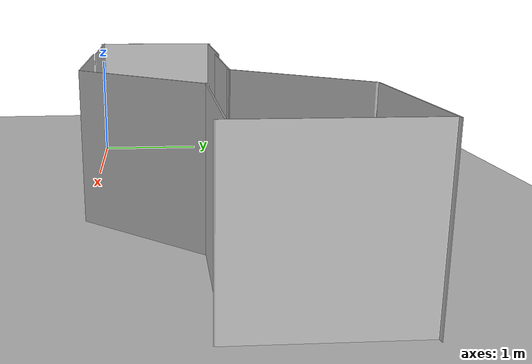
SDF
<sdf version="1.7">
 <world name="default">
  <light name="sun" type="directional">
   <pose>0 0 10 0 -0 0</pose>
   <diffuse>0.8 0.8 0.8 1</diffuse>
   <specular>0.2 0.2 0.2 1</specular>
   <attenuation>
    <range>1000</range>
    <constant>0.9</constant>
    <linear>0.01</linear>
    <quadratic>0.001</quadratic>
   </attenuation>
   <direction>-0.5 0.1 -0.9</direction>
   <spot><inner_angle>0</inner_angle><outer_angle>0</outer_angle><falloff>0</falloff></spot>
  </light>
  <model name="ground_plane">
   <static>1</static>
   <link name="link">
    <collision name="collision">
     <geometry><plane><normal>0 0 1</normal><size>100 100</size></plane></geometry>
     <surface><friction><ode><mu>100</mu><mu2>50</mu2></ode></friction></surface>
    </collision>
    <visual name="visual">
     <cast_shadows>0</cast_shadows>
     <geometry><plane><normal>0 0 1</normal><size>100 100</size></plane></geometry>
     <material>
      <script><uri>file://media/materials/scripts/gazebo.material</uri><name>Gazebo/Grey</name></script>
     </material>
    </visual>
   </link>
  </model>
  <gravity>0 0 -9.8</gravity>
  <magnetic_field>6e-06 2.3e-05 -4.2e-05</magnetic_field>
  <atmosphere type="adiabatic"/>
  <physics type="ode">
   <max_step_size>0.001</max_step_size>
   <real_time_factor>1</real_time_factor>
   <real_time_update_rate>1000</real_time_update_rate>
  </physics>
  <scene><ambient>0.4 0.4 0.4 1</ambient><background>0.7 0.7 0.7 1</background><shadows>1</shadows></scene>
  <audio><device>default</device></audio>
  <spherical_coordinates>
   <surface_model>EARTH_WGS84</surface_model>
   <latitude_deg>0</latitude_deg>
   <longitude_deg>0</longitude_deg>
   <elevation>0</elevation>
   <heading_deg>0</heading_deg>
  </spherical_coordinates>
  <model name="nist_maze_wall_120">
   <static>1</static>
   <link name="nist_maze_wall_120_link">
    <collision name="collision">
     <geometry>
      <mesh><uri>model://nist_maze_wall_120/meshes/nist_maze_wall_120.dae</uri><scale>1 1 1</scale></mesh>
     </geometry>
    </collision>
    <visual name="visual">
     <geometry>
      <mesh><uri>model://nist_maze_wall_120/meshes/nist_maze_wall_120.dae</uri><scale>1 1 1</scale></mesh>
     </geometry>
    </visual>
   </link>
   <pose>0.572736 -0.58462 0 0 -0 0</pose>
  </model>
  <model name="nist_maze_wall_120_0">
   <static>1</static>
   <link name="nist_maze_wall_120_link">
    <collision name="collision">
     <geometry>
      <mesh><uri>model://nist_maze_wall_120/meshes/nist_maze_wall_120.dae</uri><scale>1 1 1</scale></mesh>
     </geometry>
    </collision>
    <visual name="visual">
     <geometry>
      <mesh><uri>model://nist_maze_wall_120/meshes/nist_maze_wall_120.dae</uri><scale>1 1 1</scale></mesh>
     </geometry>
    </visual>
   </link>
   <pose>1.75825 -0.601623 0 0 -0 0</pose>
  </model>
  <model name="nist_maze_wall_120_1">
   <static>1</static>
   <link name="nist_maze_wall_120_link">
    <collision name="collision">
     <geometry>
      <mesh><uri>model://nist_maze_wall_120/meshes/nist_maze_wall_120.dae</uri><scale>1 1 1</scale></mesh>
     </geometry>
    </collision>
    <visual name="visual">
     <geometry>
      <mesh><uri>model://nist_maze_wall_120/meshes/nist_maze_wall_120.dae</uri><scale>1 1 1</scale></mesh>
     </geometry>
    </visual>
   </link>
   <pose>0.701305 0.55773 0 0 -0 0</pose>
  </model>
  <model name="nist_maze_wall_120_2">
   <static>1</static>
   <link name="nist_maze_wall_120_link">
    <collision name="collision">
     <geometry>
      <mesh><uri>model://nist_maze_wall_120/meshes/nist_maze_wall_120.dae</uri><scale>1 1 1</scale></mesh>
     </geometry>
    </collision>
    <visual name="visual">
     <geometry>
      <mesh><uri>model://nist_maze_wall_120/meshes/nist_maze_wall_120.dae</uri><scale>1 1 1</scale></mesh>
     </geometry>
    </visual>
   </link>
   <pose>1.82623 0.529842 0 0 -0 0</pose>
  </model>
  <model name="nist_maze_wall_120_3">
   <static>1</static>
   <link name="nist_maze_wall_120_link">
    <collision name="collision">
     <geometry>
      <mesh><uri>model://nist_maze_wall_120/meshes/nist_maze_wall_120.dae</uri><scale>1 1 1</scale></mesh>
     </geometry>
    </collision>
    <visual name="visual">
     <geometry>
      <mesh><uri>model://nist_maze_wall_120/meshes/nist_maze_wall_120.dae</uri><scale>1 1 1</scale></mesh>
     </geometry>
    </visual>
   </link>
   <pose>3.75539 1.43907 0 0 -0 0</pose>
  </model>
  <model name="nist_maze_wall_120_4">
   <static>1</static>
   <link name="nist_maze_wall_120_link">
    <collision name="collision">
     <geometry>
      <mesh><uri>model://nist_maze_wall_120/meshes/nist_maze_wall_120.dae</uri><scale>1 1 1</scale></mesh>
     </geometry>
    </collision>
    <visual name="visual">
     <geometry>
      <mesh><uri>model://nist_maze_wall_120/meshes/nist_maze_wall_120.dae</uri><scale>1 1 1</scale></mesh>
     </geometry>
    </visual>
   </link>
   <pose>3.23034 1.18998 0 0 -0 0.875978</pose>
  </model>
  <model name="nist_maze_wall_120_4_clone">
   <static>1</static>
   <link name="nist_maze_wall_120_link">
    <collision name="collision">
     <geometry>
      <mesh><uri>model://nist_maze_wall_120/meshes/nist_maze_wall_120.dae</uri><scale>1 1 1</scale></mesh>
     </geometry>
    </collision>
    <visual name="visual">
     <geometry>
      <mesh><uri>model://nist_maze_wall_120/meshes/nist_maze_wall_120.dae</uri><scale>1 1 1</scale></mesh>
     </geometry>
    </visual>
   </link>
   <pose>3.20748 0.068997 0 0 -0 0.875978</pose>
  </model>
  <model name="nist_maze_wall_120_3_clone">
   <static>1</static>
   <link name="nist_maze_wall_120_link">
    <collision name="collision">
     <geometry>
      <mesh><uri>model://nist_maze_wall_120/meshes/nist_maze_wall_120.dae</uri><scale>1 1 1</scale></mesh>
     </geometry>
    </collision>
    <visual name="visual">
     <geometry>
      <mesh><uri>model://nist_maze_wall_120/meshes/nist_maze_wall_120.dae</uri><scale>1 1 1</scale></mesh>
     </geometry>
    </visual>
   </link>
   <pose>3.68405 0.296569 0 0 -0 0</pose>
  </model>
  <model name="nist_maze_wall_120_5">
   <static>1</static>
   <link name="nist_maze_wall_120_link">
    <collision name="collision">
     <geometry>
      <mesh><uri>model://nist_maze_wall_120/meshes/nist_maze_wall_120.dae</uri><scale>1 1 1</scale></mesh>
     </geometry>
    </collision>
    <visual name="visual">
     <geometry>
      <mesh><uri>model://nist_maze_wall_120/meshes/nist_maze_wall_120.dae</uri><scale>1 1 1</scale></mesh>
     </geometry>
    </visual>
   </link>
   <pose>3.7013 1.4551 0 0 0 -1.59926</pose>
  </model>
  <model name="nist_maze_wall_120_5_clone">
   <static>1</static>
   <link name="nist_maze_wall_120_link">
    <collision name="collision">
     <geometry>
      <mesh><uri>model://nist_maze_wall_120/meshes/nist_maze_wall_120.dae</uri><scale>1 1 1</scale></mesh>
     </geometry>
    </collision>
    <visual name="visual">
     <geometry>
      <mesh><uri>model://nist_maze_wall_120/meshes/nist_maze_wall_120.dae</uri><scale>1 1 1</scale></mesh>
     </geometry>
    </visual>
   </link>
   <pose>-0.526544 0.601166 0 0 0 -1.59926</pose>
  </model>
 </world>
</sdf>
